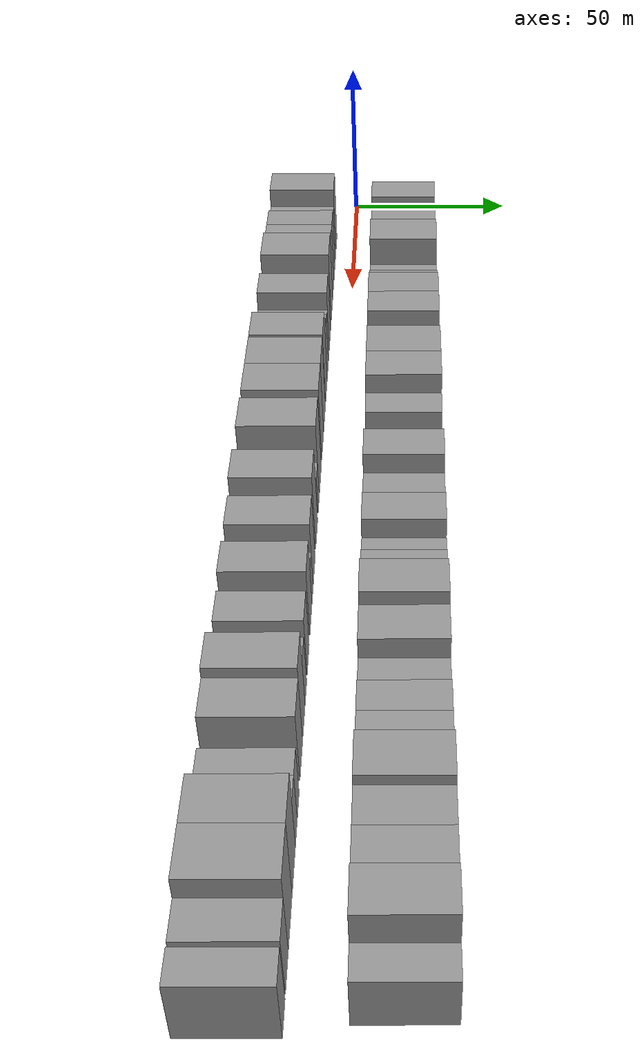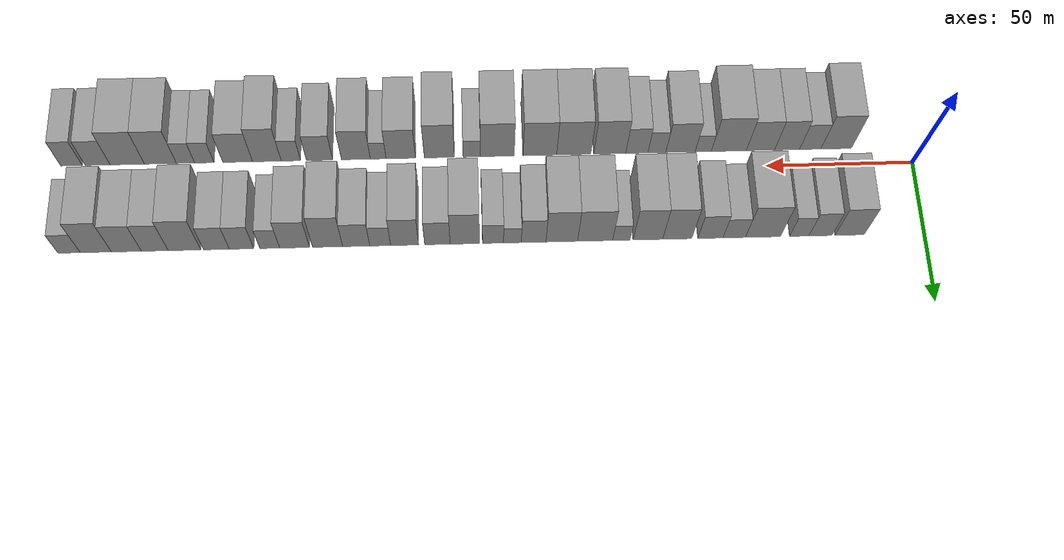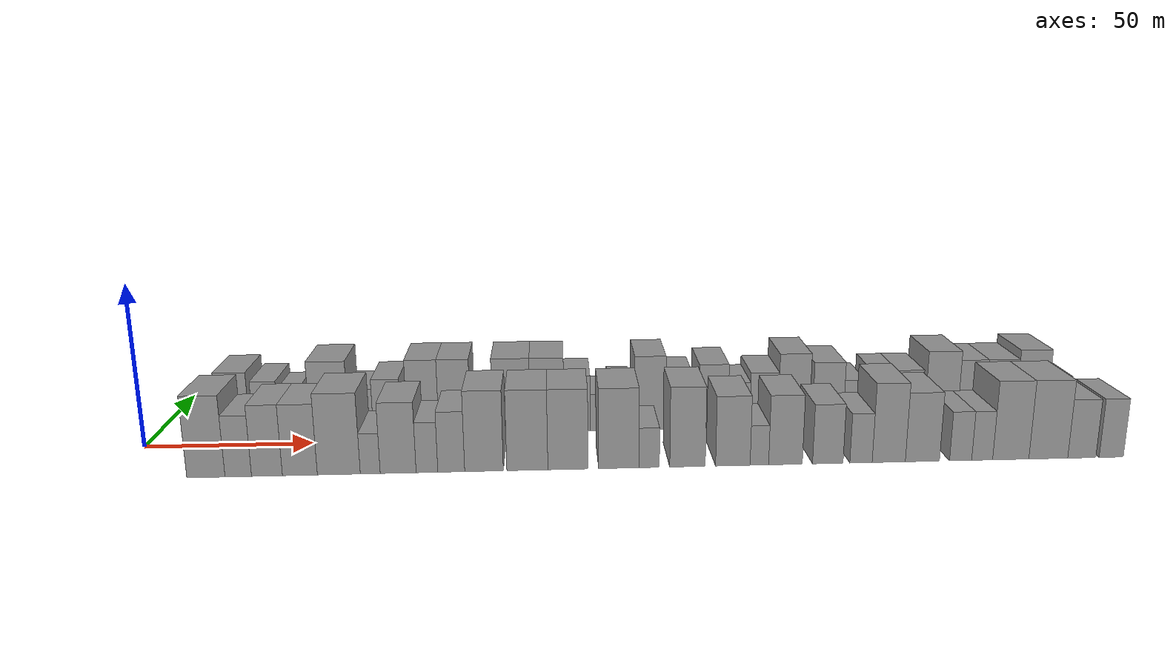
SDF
<sdf version="1.6">
 <world name="default">
  <scene>
   <sky><clouds><speed>12</speed></clouds></sky>
   <ambient>0.4 0.4 0.4 1</ambient>
   <background>0.7 0.7 0.7 1</background>
   <shadows>1</shadows>
  </scene>
  <gravity>0 0 -9.8066</gravity>
  <magnetic_field>6e-06 2.3e-05 -4.2e-05</magnetic_field>
  <physics default="0" name="default_physics" type="ode">
   <ode>
    <solver>
     <type>quick</type>
     <iters>10</iters>
     <sor>1.0</sor>
     <use_dynamic_moi_rescaling>0</use_dynamic_moi_rescaling>
    </solver>
    <constraints>
     <cfm>0</cfm>
     <erp>0.2</erp>
     <contact_max_correcting_vel>100</contact_max_correcting_vel>
     <contact_surface_layer>0.001</contact_surface_layer>
    </constraints>
   </ode>
   <max_step_size>0.004</max_step_size>
   <real_time_factor>1</real_time_factor>
   <real_time_update_rate>250</real_time_update_rate>
  </physics>
  <light name="sun" type="directional">
   <pose>0 0 10 0 0 0</pose>
   <diffuse>0.8 0.8 0.8 1</diffuse>
   <specular>0.2 0.2 0.2 1</specular>
   <attenuation>
    <range>1000</range>
    <constant>0.9</constant>
    <linear>0.01</linear>
    <quadratic>0.001</quadratic>
   </attenuation>
   <direction>-0.5 0.1 -0.9</direction>
  </light>
  <model name="building_1">
   <static>1</static>
   <pose>24.8922 16.0000 0 0.000000 0.000000 1.570796</pose>
   <link name="link">
    <pose>0 0 10.50 0 0 0</pose>
    <collision name="collision"><geometry><box><size>20.0000 9.7844 21.0000</size></box></geometry></collision>
    <visual name="visual">
     <cast_shadows>0</cast_shadows>
     <geometry><box><size>20.0000 9.7844 21.0000</size></box></geometry>
     <material>
      <script>
       <uri>model://grey_wall/materials/scripts</uri>
       <uri>model://grey_wall/materials/textures</uri>
       <name>vrc/grey_wall</name>
      </script>
     </material>
    </visual>
   </link>
  </model>
  <model name="building_2">
   <static>1</static>
   <pose>34.6466 16.0000 0 0.000000 0.000000 1.570796</pose>
   <link name="link">
    <pose>0 0 9.00 0 0 0</pose>
    <collision name="collision"><geometry><box><size>20.0000 7.7245 18.0000</size></box></geometry></collision>
    <visual name="visual">
     <cast_shadows>0</cast_shadows>
     <geometry><box><size>20.0000 7.7245 18.0000</size></box></geometry>
     <material>
      <script>
       <uri>model://grey_wall/materials/scripts</uri>
       <uri>model://grey_wall/materials/textures</uri>
       <name>vrc/grey_wall</name>
      </script>
     </material>
    </visual>
   </link>
  </model>
  <model name="building_3">
   <static>1</static>
   <pose>41.7314 16.0000 0 0.000000 0.000000 1.570796</pose>
   <link name="link">
    <pose>0 0 7.50 0 0 0</pose>
    <collision name="collision"><geometry><box><size>20.0000 6.4452 15.0000</size></box></geometry></collision>
    <visual name="visual">
     <cast_shadows>0</cast_shadows>
     <geometry><box><size>20.0000 6.4452 15.0000</size></box></geometry>
     <material>
      <script>
       <uri>model://grey_wall/materials/scripts</uri>
       <uri>model://grey_wall/materials/textures</uri>
       <name>vrc/grey_wall</name>
      </script>
     </material>
    </visual>
   </link>
  </model>
  <model name="building_4">
   <static>1</static>
   <pose>53.8338 16.0000 0 0.000000 0.000000 1.570796</pose>
   <link name="link">
    <pose>0 0 12.00 0 0 0</pose>
    <collision name="collision"><geometry><box><size>20.0000 11.7596 24.0000</size></box></geometry></collision>
    <visual name="visual">
     <cast_shadows>0</cast_shadows>
     <geometry><box><size>20.0000 11.7596 24.0000</size></box></geometry>
     <material>
      <script>
       <uri>model://grey_wall/materials/scripts</uri>
       <uri>model://grey_wall/materials/textures</uri>
       <name>vrc/grey_wall</name>
      </script>
     </material>
    </visual>
   </link>
  </model>
  <model name="building_5">
   <static>1</static>
   <pose>63.4486 16.0000 0 0.000000 0.000000 1.570796</pose>
   <link name="link">
    <pose>0 0 7.50 0 0 0</pose>
    <collision name="collision"><geometry><box><size>20.0000 7.4700 15.0000</size></box></geometry></collision>
    <visual name="visual">
     <cast_shadows>0</cast_shadows>
     <geometry><box><size>20.0000 7.4700 15.0000</size></box></geometry>
     <material>
      <script>
       <uri>model://grey_wall/materials/scripts</uri>
       <uri>model://grey_wall/materials/textures</uri>
       <name>vrc/grey_wall</name>
      </script>
     </material>
    </visual>
   </link>
  </model>
  <model name="building_6">
   <static>1</static>
   <pose>71.3772 16.0000 0 0.000000 0.000000 1.570796</pose>
   <link name="link">
    <pose>0 0 9.00 0 0 0</pose>
    <collision name="collision"><geometry><box><size>20.0000 8.3873 18.0000</size></box></geometry></collision>
    <visual name="visual">
     <cast_shadows>0</cast_shadows>
     <geometry><box><size>20.0000 8.3873 18.0000</size></box></geometry>
     <material>
      <script>
       <uri>model://grey_wall/materials/scripts</uri>
       <uri>model://grey_wall/materials/textures</uri>
       <name>vrc/grey_wall</name>
      </script>
     </material>
    </visual>
   </link>
  </model>
  <model name="building_7">
   <static>1</static>
   <pose>82.4256 16.0000 0 0.000000 0.000000 1.570796</pose>
   <link name="link">
    <pose>0 0 12.00 0 0 0</pose>
    <collision name="collision"><geometry><box><size>20.0000 9.7095 24.0000</size></box></geometry></collision>
    <visual name="visual">
     <cast_shadows>0</cast_shadows>
     <geometry><box><size>20.0000 9.7095 24.0000</size></box></geometry>
     <material>
      <script>
       <uri>model://grey_wall/materials/scripts</uri>
       <uri>model://grey_wall/materials/textures</uri>
       <name>vrc/grey_wall</name>
      </script>
     </material>
    </visual>
   </link>
  </model>
  <model name="building_8">
   <static>1</static>
   <pose>92.1983 16.0000 0 0.000000 0.000000 1.570796</pose>
   <link name="link">
    <pose>0 0 12.00 0 0 0</pose>
    <collision name="collision"><geometry><box><size>20.0000 9.8359 24.0000</size></box></geometry></collision>
    <visual name="visual">
     <cast_shadows>0</cast_shadows>
     <geometry><box><size>20.0000 9.8359 24.0000</size></box></geometry>
     <material>
      <script>
       <uri>model://grey_wall/materials/scripts</uri>
       <uri>model://grey_wall/materials/textures</uri>
       <name>vrc/grey_wall</name>
      </script>
     </material>
    </visual>
   </link>
  </model>
  <model name="building_9">
   <static>1</static>
   <pose>101.0169 16.0000 0 0.000000 0.000000 1.570796</pose>
   <link name="link">
    <pose>0 0 6.00 0 0 0</pose>
    <collision name="collision"><geometry><box><size>20.0000 5.8012 12.0000</size></box></geometry></collision>
    <visual name="visual">
     <cast_shadows>0</cast_shadows>
     <geometry><box><size>20.0000 5.8012 12.0000</size></box></geometry>
     <material>
      <script>
       <uri>model://grey_wall/materials/scripts</uri>
       <uri>model://grey_wall/materials/textures</uri>
       <name>vrc/grey_wall</name>
      </script>
     </material>
    </visual>
   </link>
  </model>
  <model name="building_10">
   <static>1</static>
   <pose>109.7553 16.0000 0 0.000000 0.000000 1.570796</pose>
   <link name="link">
    <pose>0 0 12.00 0 0 0</pose>
    <collision name="collision"><geometry><box><size>20.0000 11.6758 24.0000</size></box></geometry></collision>
    <visual name="visual">
     <cast_shadows>0</cast_shadows>
     <geometry><box><size>20.0000 11.6758 24.0000</size></box></geometry>
     <material>
      <script>
       <uri>model://grey_wall/materials/scripts</uri>
       <uri>model://grey_wall/materials/textures</uri>
       <name>vrc/grey_wall</name>
      </script>
     </material>
    </visual>
   </link>
  </model>
  <model name="building_11">
   <static>1</static>
   <pose>120.8541 16.0000 0 0.000000 0.000000 1.570796</pose>
   <link name="link">
    <pose>0 0 12.00 0 0 0</pose>
    <collision name="collision"><geometry><box><size>20.0000 10.5218 24.0000</size></box></geometry></collision>
    <visual name="visual">
     <cast_shadows>0</cast_shadows>
     <geometry><box><size>20.0000 10.5218 24.0000</size></box></geometry>
     <material>
      <script>
       <uri>model://grey_wall/materials/scripts</uri>
       <uri>model://grey_wall/materials/textures</uri>
       <name>vrc/grey_wall</name>
      </script>
     </material>
    </visual>
   </link>
  </model>
  <model name="building_12">
   <static>1</static>
   <pose>130.2125 16.0000 0 0.000000 0.000000 1.570796</pose>
   <link name="link">
    <pose>0 0 9.00 0 0 0</pose>
    <collision name="collision"><geometry><box><size>20.0000 8.1949 18.0000</size></box></geometry></collision>
    <visual name="visual">
     <cast_shadows>0</cast_shadows>
     <geometry><box><size>20.0000 8.1949 18.0000</size></box></geometry>
     <material>
      <script>
       <uri>model://grey_wall/materials/scripts</uri>
       <uri>model://grey_wall/materials/textures</uri>
       <name>vrc/grey_wall</name>
      </script>
     </material>
    </visual>
   </link>
  </model>
  <model name="building_13">
   <static>1</static>
   <pose>137.2644 16.0000 0 0.000000 0.000000 1.570796</pose>
   <link name="link">
    <pose>0 0 6.00 0 0 0</pose>
    <collision name="collision"><geometry><box><size>20.0000 5.9089 12.0000</size></box></geometry></collision>
    <visual name="visual">
     <cast_shadows>0</cast_shadows>
     <geometry><box><size>20.0000 5.9089 12.0000</size></box></geometry>
     <material>
      <script>
       <uri>model://grey_wall/materials/scripts</uri>
       <uri>model://grey_wall/materials/textures</uri>
       <name>vrc/grey_wall</name>
      </script>
     </material>
    </visual>
   </link>
  </model>
  <model name="building_14">
   <static>1</static>
   <pose>143.6987 16.0000 0 0.000000 0.000000 1.570796</pose>
   <link name="link">
    <pose>0 0 7.50 0 0 0</pose>
    <collision name="collision"><geometry><box><size>20.0000 6.9597 15.0000</size></box></geometry></collision>
    <visual name="visual">
     <cast_shadows>0</cast_shadows>
     <geometry><box><size>20.0000 6.9597 15.0000</size></box></geometry>
     <material>
      <script>
       <uri>model://grey_wall/materials/scripts</uri>
       <uri>model://grey_wall/materials/textures</uri>
       <name>vrc/grey_wall</name>
      </script>
     </material>
    </visual>
   </link>
  </model>
  <model name="building_15">
   <static>1</static>
   <pose>153.0461 16.0000 0 0.000000 0.000000 1.570796</pose>
   <link name="link">
    <pose>0 0 12.00 0 0 0</pose>
    <collision name="collision"><geometry><box><size>20.0000 9.7351 24.0000</size></box></geometry></collision>
    <visual name="visual">
     <cast_shadows>0</cast_shadows>
     <geometry><box><size>20.0000 9.7351 24.0000</size></box></geometry>
     <material>
      <script>
       <uri>model://grey_wall/materials/scripts</uri>
       <uri>model://grey_wall/materials/textures</uri>
       <name>vrc/grey_wall</name>
      </script>
     </material>
    </visual>
   </link>
  </model>
  <model name="building_16">
   <static>1</static>
   <pose>162.1340 16.0000 0 0.000000 0.000000 1.570796</pose>
   <link name="link">
    <pose>0 0 9.00 0 0 0</pose>
    <collision name="collision"><geometry><box><size>20.0000 8.4407 18.0000</size></box></geometry></collision>
    <visual name="visual">
     <cast_shadows>0</cast_shadows>
     <geometry><box><size>20.0000 8.4407 18.0000</size></box></geometry>
     <material>
      <script>
       <uri>model://grey_wall/materials/scripts</uri>
       <uri>model://grey_wall/materials/textures</uri>
       <name>vrc/grey_wall</name>
      </script>
     </material>
    </visual>
   </link>
  </model>
  <model name="building_17">
   <static>1</static>
   <pose>172.9855 16.0000 0 0.000000 0.000000 1.570796</pose>
   <link name="link">
    <pose>0 0 10.50 0 0 0</pose>
    <collision name="collision"><geometry><box><size>20.0000 9.2622 21.0000</size></box></geometry></collision>
    <visual name="visual">
     <cast_shadows>0</cast_shadows>
     <geometry><box><size>20.0000 9.2622 21.0000</size></box></geometry>
     <material>
      <script>
       <uri>model://grey_wall/materials/scripts</uri>
       <uri>model://grey_wall/materials/textures</uri>
       <name>vrc/grey_wall</name>
      </script>
     </material>
    </visual>
   </link>
  </model>
  <model name="building_18">
   <static>1</static>
   <pose>181.0841 16.0000 0 0.000000 0.000000 1.570796</pose>
   <link name="link">
    <pose>0 0 7.50 0 0 0</pose>
    <collision name="collision"><geometry><box><size>20.0000 6.9351 15.0000</size></box></geometry></collision>
    <visual name="visual">
     <cast_shadows>0</cast_shadows>
     <geometry><box><size>20.0000 6.9351 15.0000</size></box></geometry>
     <material>
      <script>
       <uri>model://grey_wall/materials/scripts</uri>
       <uri>model://grey_wall/materials/textures</uri>
       <name>vrc/grey_wall</name>
      </script>
     </material>
    </visual>
   </link>
  </model>
  <model name="building_19">
   <static>1</static>
   <pose>189.0419 16.0000 0 0.000000 0.000000 1.570796</pose>
   <link name="link">
    <pose>0 0 9.00 0 0 0</pose>
    <collision name="collision"><geometry><box><size>20.0000 8.9804 18.0000</size></box></geometry></collision>
    <visual name="visual">
     <cast_shadows>0</cast_shadows>
     <geometry><box><size>20.0000 8.9804 18.0000</size></box></geometry>
     <material>
      <script>
       <uri>model://grey_wall/materials/scripts</uri>
       <uri>model://grey_wall/materials/textures</uri>
       <name>vrc/grey_wall</name>
      </script>
     </material>
    </visual>
   </link>
  </model>
  <model name="building_20">
   <static>1</static>
   <pose>198.5255 16.0000 0 0.000000 0.000000 1.570796</pose>
   <link name="link">
    <pose>0 0 12.00 0 0 0</pose>
    <collision name="collision"><geometry><box><size>20.0000 9.9867 24.0000</size></box></geometry></collision>
    <visual name="visual">
     <cast_shadows>0</cast_shadows>
     <geometry><box><size>20.0000 9.9867 24.0000</size></box></geometry>
     <material>
      <script>
       <uri>model://grey_wall/materials/scripts</uri>
       <uri>model://grey_wall/materials/textures</uri>
       <name>vrc/grey_wall</name>
      </script>
     </material>
    </visual>
   </link>
  </model>
  <model name="building_21">
   <static>1</static>
   <pose>209.4666 16.0000 0 0.000000 0.000000 1.570796</pose>
   <link name="link">
    <pose>0 0 10.50 0 0 0</pose>
    <collision name="collision"><geometry><box><size>20.0000 9.8956 21.0000</size></box></geometry></collision>
    <visual name="visual">
     <cast_shadows>0</cast_shadows>
     <geometry><box><size>20.0000 9.8956 21.0000</size></box></geometry>
     <material>
      <script>
       <uri>model://grey_wall/materials/scripts</uri>
       <uri>model://grey_wall/materials/textures</uri>
       <name>vrc/grey_wall</name>
      </script>
     </material>
    </visual>
   </link>
  </model>
  <model name="building_22">
   <static>1</static>
   <pose>217.6967 16.0000 0 0.000000 0.000000 1.570796</pose>
   <link name="link">
    <pose>0 0 7.50 0 0 0</pose>
    <collision name="collision"><geometry><box><size>20.0000 6.5645 15.0000</size></box></geometry></collision>
    <visual name="visual">
     <cast_shadows>0</cast_shadows>
     <geometry><box><size>20.0000 6.5645 15.0000</size></box></geometry>
     <material>
      <script>
       <uri>model://grey_wall/materials/scripts</uri>
       <uri>model://grey_wall/materials/textures</uri>
       <name>vrc/grey_wall</name>
      </script>
     </material>
    </visual>
   </link>
  </model>
  <model name="building_23">
   <static>1</static>
   <pose>227.0203 16.0000 0 0.000000 0.000000 1.570796</pose>
   <link name="link">
    <pose>0 0 9.00 0 0 0</pose>
    <collision name="collision"><geometry><box><size>20.0000 8.0828 18.0000</size></box></geometry></collision>
    <visual name="visual">
     <cast_shadows>0</cast_shadows>
     <geometry><box><size>20.0000 8.0828 18.0000</size></box></geometry>
     <material>
      <script>
       <uri>model://grey_wall/materials/scripts</uri>
       <uri>model://grey_wall/materials/textures</uri>
       <name>vrc/grey_wall</name>
      </script>
     </material>
    </visual>
   </link>
  </model>
  <model name="building_24">
   <static>1</static>
   <pose>235.3037 16.0000 0 0.000000 0.000000 1.570796</pose>
   <link name="link">
    <pose>0 0 9.00 0 0 0</pose>
    <collision name="collision"><geometry><box><size>20.0000 8.4839 18.0000</size></box></geometry></collision>
    <visual name="visual">
     <cast_shadows>0</cast_shadows>
     <geometry><box><size>20.0000 8.4839 18.0000</size></box></geometry>
     <material>
      <script>
       <uri>model://grey_wall/materials/scripts</uri>
       <uri>model://grey_wall/materials/textures</uri>
       <name>vrc/grey_wall</name>
      </script>
     </material>
    </visual>
   </link>
  </model>
  <model name="building_25">
   <static>1</static>
   <pose>245.9014 16.0000 0 0.000000 0.000000 1.570796</pose>
   <link name="link">
    <pose>0 0 12.00 0 0 0</pose>
    <collision name="collision"><geometry><box><size>20.0000 10.7115 24.0000</size></box></geometry></collision>
    <visual name="visual">
     <cast_shadows>0</cast_shadows>
     <geometry><box><size>20.0000 10.7115 24.0000</size></box></geometry>
     <material>
      <script>
       <uri>model://grey_wall/materials/scripts</uri>
       <uri>model://grey_wall/materials/textures</uri>
       <name>vrc/grey_wall</name>
      </script>
     </material>
    </visual>
   </link>
  </model>
  <model name="building_26">
   <static>1</static>
   <pose>255.6859 16.0000 0 0.000000 0.000000 1.570796</pose>
   <link name="link">
    <pose>0 0 10.50 0 0 0</pose>
    <collision name="collision"><geometry><box><size>20.0000 8.8575 21.0000</size></box></geometry></collision>
    <visual name="visual">
     <cast_shadows>0</cast_shadows>
     <geometry><box><size>20.0000 8.8575 21.0000</size></box></geometry>
     <material>
      <script>
       <uri>model://grey_wall/materials/scripts</uri>
       <uri>model://grey_wall/materials/textures</uri>
       <name>vrc/grey_wall</name>
      </script>
     </material>
    </visual>
   </link>
  </model>
  <model name="building_27">
   <static>1</static>
   <pose>265.0890 16.0000 0 0.000000 0.000000 1.570796</pose>
   <link name="link">
    <pose>0 0 10.50 0 0 0</pose>
    <collision name="collision"><geometry><box><size>20.0000 9.9487 21.0000</size></box></geometry></collision>
    <visual name="visual">
     <cast_shadows>0</cast_shadows>
     <geometry><box><size>20.0000 9.9487 21.0000</size></box></geometry>
     <material>
      <script>
       <uri>model://grey_wall/materials/scripts</uri>
       <uri>model://grey_wall/materials/textures</uri>
       <name>vrc/grey_wall</name>
      </script>
     </material>
    </visual>
   </link>
  </model>
  <model name="building_28">
   <static>1</static>
   <pose>275.1896 16.0000 0 0.000000 0.000000 1.570796</pose>
   <link name="link">
    <pose>0 0 12.00 0 0 0</pose>
    <collision name="collision"><geometry><box><size>20.0000 10.2523 24.0000</size></box></geometry></collision>
    <visual name="visual">
     <cast_shadows>0</cast_shadows>
     <geometry><box><size>20.0000 10.2523 24.0000</size></box></geometry>
     <material>
      <script>
       <uri>model://grey_wall/materials/scripts</uri>
       <uri>model://grey_wall/materials/textures</uri>
       <name>vrc/grey_wall</name>
      </script>
     </material>
    </visual>
   </link>
  </model>
  <model name="building_29">
   <static>1</static>
   <pose>283.9976 16.0000 0 0.000000 0.000000 1.570796</pose>
   <link name="link">
    <pose>0 0 7.50 0 0 0</pose>
    <collision name="collision"><geometry><box><size>20.0000 7.3639 15.0000</size></box></geometry></collision>
    <visual name="visual">
     <cast_shadows>0</cast_shadows>
     <geometry><box><size>20.0000 7.3639 15.0000</size></box></geometry>
     <material>
      <script>
       <uri>model://grey_wall/materials/scripts</uri>
       <uri>model://grey_wall/materials/textures</uri>
       <name>vrc/grey_wall</name>
      </script>
     </material>
    </visual>
   </link>
  </model>
  <model name="building_30">
   <static>1</static>
   <pose>25.2647 -16.0000 0 0.000000 0.000000 1.570796</pose>
   <link name="link">
    <pose>0 0 12.00 0 0 0</pose>
    <collision name="collision"><geometry><box><size>20.0000 10.5294 24.0000</size></box></geometry></collision>
    <visual name="visual">
     <cast_shadows>0</cast_shadows>
     <geometry><box><size>20.0000 10.5294 24.0000</size></box></geometry>
     <material>
      <script>
       <uri>model://grey_wall/materials/scripts</uri>
       <uri>model://grey_wall/materials/textures</uri>
       <name>vrc/grey_wall</name>
      </script>
     </material>
    </visual>
   </link>
  </model>
  <model name="building_31">
   <static>1</static>
   <pose>34.1920 -16.0000 0 0.000000 0.000000 1.570796</pose>
   <link name="link">
    <pose>0 0 9.00 0 0 0</pose>
    <collision name="collision"><geometry><box><size>20.0000 7.3253 18.0000</size></box></geometry></collision>
    <visual name="visual">
     <cast_shadows>0</cast_shadows>
     <geometry><box><size>20.0000 7.3253 18.0000</size></box></geometry>
     <material>
      <script>
       <uri>model://grey_wall/materials/scripts</uri>
       <uri>model://grey_wall/materials/textures</uri>
       <name>vrc/grey_wall</name>
      </script>
     </material>
    </visual>
   </link>
  </model>
  <model name="building_32">
   <static>1</static>
   <pose>42.1336 -16.0000 0 0.000000 0.000000 1.570796</pose>
   <link name="link">
    <pose>0 0 10.50 0 0 0</pose>
    <collision name="collision"><geometry><box><size>20.0000 8.5578 21.0000</size></box></geometry></collision>
    <visual name="visual">
     <cast_shadows>0</cast_shadows>
     <geometry><box><size>20.0000 8.5578 21.0000</size></box></geometry>
     <material>
      <script>
       <uri>model://grey_wall/materials/scripts</uri>
       <uri>model://grey_wall/materials/textures</uri>
       <name>vrc/grey_wall</name>
      </script>
     </material>
    </visual>
   </link>
  </model>
  <model name="building_33">
   <static>1</static>
   <pose>51.2669 -16.0000 0 0.000000 0.000000 1.570796</pose>
   <link name="link">
    <pose>0 0 10.50 0 0 0</pose>
    <collision name="collision"><geometry><box><size>20.0000 9.7089 21.0000</size></box></geometry></collision>
    <visual name="visual">
     <cast_shadows>0</cast_shadows>
     <geometry><box><size>20.0000 9.7089 21.0000</size></box></geometry>
     <material>
      <script>
       <uri>model://grey_wall/materials/scripts</uri>
       <uri>model://grey_wall/materials/textures</uri>
       <name>vrc/grey_wall</name>
      </script>
     </material>
    </visual>
   </link>
  </model>
  <model name="building_34">
   <static>1</static>
   <pose>62.1186 -16.0000 0 0.000000 0.000000 1.570796</pose>
   <link name="link">
    <pose>0 0 12.00 0 0 0</pose>
    <collision name="collision"><geometry><box><size>20.0000 11.9946 24.0000</size></box></geometry></collision>
    <visual name="visual">
     <cast_shadows>0</cast_shadows>
     <geometry><box><size>20.0000 11.9946 24.0000</size></box></geometry>
     <material>
      <script>
       <uri>model://grey_wall/materials/scripts</uri>
       <uri>model://grey_wall/materials/textures</uri>
       <name>vrc/grey_wall</name>
      </script>
     </material>
    </visual>
   </link>
  </model>
  <model name="building_35">
   <static>1</static>
   <pose>70.9015 -16.0000 0 0.000000 0.000000 1.570796</pose>
   <link name="link">
    <pose>0 0 6.00 0 0 0</pose>
    <collision name="collision"><geometry><box><size>20.0000 5.5711 12.0000</size></box></geometry></collision>
    <visual name="visual">
     <cast_shadows>0</cast_shadows>
     <geometry><box><size>20.0000 5.5711 12.0000</size></box></geometry>
     <material>
      <script>
       <uri>model://grey_wall/materials/scripts</uri>
       <uri>model://grey_wall/materials/textures</uri>
       <name>vrc/grey_wall</name>
      </script>
     </material>
    </visual>
   </link>
  </model>
  <model name="building_36">
   <static>1</static>
   <pose>78.7327 -16.0000 0 0.000000 0.000000 1.570796</pose>
   <link name="link">
    <pose>0 0 10.50 0 0 0</pose>
    <collision name="collision"><geometry><box><size>20.0000 10.0915 21.0000</size></box></geometry></collision>
    <visual name="visual">
     <cast_shadows>0</cast_shadows>
     <geometry><box><size>20.0000 10.0915 21.0000</size></box></geometry>
     <material>
      <script>
       <uri>model://grey_wall/materials/scripts</uri>
       <uri>model://grey_wall/materials/textures</uri>
       <name>vrc/grey_wall</name>
      </script>
     </material>
    </visual>
   </link>
  </model>
  <model name="building_37">
   <static>1</static>
   <pose>86.8334 -16.0000 0 0.000000 0.000000 1.570796</pose>
   <link name="link">
    <pose>0 0 7.50 0 0 0</pose>
    <collision name="collision"><geometry><box><size>20.0000 6.1098 15.0000</size></box></geometry></collision>
    <visual name="visual">
     <cast_shadows>0</cast_shadows>
     <geometry><box><size>20.0000 6.1098 15.0000</size></box></geometry>
     <material>
      <script>
       <uri>model://grey_wall/materials/scripts</uri>
       <uri>model://grey_wall/materials/textures</uri>
       <name>vrc/grey_wall</name>
      </script>
     </material>
    </visual>
   </link>
  </model>
  <model name="building_38">
   <static>1</static>
   <pose>93.6871 -16.0000 0 0.000000 0.000000 1.570796</pose>
   <link name="link">
    <pose>0 0 9.00 0 0 0</pose>
    <collision name="collision"><geometry><box><size>20.0000 7.5977 18.0000</size></box></geometry></collision>
    <visual name="visual">
     <cast_shadows>0</cast_shadows>
     <geometry><box><size>20.0000 7.5977 18.0000</size></box></geometry>
     <material>
      <script>
       <uri>model://grey_wall/materials/scripts</uri>
       <uri>model://grey_wall/materials/textures</uri>
       <name>vrc/grey_wall</name>
      </script>
     </material>
    </visual>
   </link>
  </model>
  <model name="building_39">
   <static>1</static>
   <pose>102.9538 -16.0000 0 0.000000 0.000000 1.570796</pose>
   <link name="link">
    <pose>0 0 12.00 0 0 0</pose>
    <collision name="collision"><geometry><box><size>20.0000 10.9356 24.0000</size></box></geometry></collision>
    <visual name="visual">
     <cast_shadows>0</cast_shadows>
     <geometry><box><size>20.0000 10.9356 24.0000</size></box></geometry>
     <material>
      <script>
       <uri>model://grey_wall/materials/scripts</uri>
       <uri>model://grey_wall/materials/textures</uri>
       <name>vrc/grey_wall</name>
      </script>
     </material>
    </visual>
   </link>
  </model>
  <model name="building_40">
   <static>1</static>
   <pose>115.2608 -16.0000 0 0.000000 0.000000 1.570796</pose>
   <link name="link">
    <pose>0 0 12.00 0 0 0</pose>
    <collision name="collision"><geometry><box><size>20.0000 11.6785 24.0000</size></box></geometry></collision>
    <visual name="visual">
     <cast_shadows>0</cast_shadows>
     <geometry><box><size>20.0000 11.6785 24.0000</size></box></geometry>
     <material>
      <script>
       <uri>model://grey_wall/materials/scripts</uri>
       <uri>model://grey_wall/materials/textures</uri>
       <name>vrc/grey_wall</name>
      </script>
     </material>
    </visual>
   </link>
  </model>
  <model name="building_41">
   <static>1</static>
   <pose>126.8545 -16.0000 0 0.000000 0.000000 1.570796</pose>
   <link name="link">
    <pose>0 0 12.00 0 0 0</pose>
    <collision name="collision"><geometry><box><size>20.0000 11.5088 24.0000</size></box></geometry></collision>
    <visual name="visual">
     <cast_shadows>0</cast_shadows>
     <geometry><box><size>20.0000 11.5088 24.0000</size></box></geometry>
     <material>
      <script>
       <uri>model://grey_wall/materials/scripts</uri>
       <uri>model://grey_wall/materials/textures</uri>
       <name>vrc/grey_wall</name>
      </script>
     </material>
    </visual>
   </link>
  </model>
  <model name="building_42">
   <static>1</static>
   <pose>141.3920 -16.0000 0 0.000000 0.000000 1.570796</pose>
   <link name="link">
    <pose>0 0 12.00 0 0 0</pose>
    <collision name="collision"><geometry><box><size>20.0000 11.5662 24.0000</size></box></geometry></collision>
    <visual name="visual">
     <cast_shadows>0</cast_shadows>
     <geometry><box><size>20.0000 11.5662 24.0000</size></box></geometry>
     <material>
      <script>
       <uri>model://grey_wall/materials/scripts</uri>
       <uri>model://grey_wall/materials/textures</uri>
       <name>vrc/grey_wall</name>
      </script>
     </material>
    </visual>
   </link>
  </model>
  <model name="building_43">
   <static>1</static>
   <pose>150.1146 -16.0000 0 0.000000 0.000000 1.570796</pose>
   <link name="link">
    <pose>0 0 6.00 0 0 0</pose>
    <collision name="collision"><geometry><box><size>20.0000 5.8790 12.0000</size></box></geometry></collision>
    <visual name="visual">
     <cast_shadows>0</cast_shadows>
     <geometry><box><size>20.0000 5.8790 12.0000</size></box></geometry>
     <material>
      <script>
       <uri>model://grey_wall/materials/scripts</uri>
       <uri>model://grey_wall/materials/textures</uri>
       <name>vrc/grey_wall</name>
      </script>
     </material>
    </visual>
   </link>
  </model>
  <model name="building_44">
   <static>1</static>
   <pose>161.1828 -16.0000 0 0.000000 0.000000 1.570796</pose>
   <link name="link">
    <pose>0 0 12.00 0 0 0</pose>
    <collision name="collision"><geometry><box><size>20.0000 10.2574 24.0000</size></box></geometry></collision>
    <visual name="visual">
     <cast_shadows>0</cast_shadows>
     <geometry><box><size>20.0000 10.2574 24.0000</size></box></geometry>
     <material>
      <script>
       <uri>model://grey_wall/materials/scripts</uri>
       <uri>model://grey_wall/materials/textures</uri>
       <name>vrc/grey_wall</name>
      </script>
     </material>
    </visual>
   </link>
  </model>
  <model name="building_45">
   <static>1</static>
   <pose>174.3291 -16.0000 0 0.000000 0.000000 1.570796</pose>
   <link name="link">
    <pose>0 0 10.50 0 0 0</pose>
    <collision name="collision"><geometry><box><size>20.0000 10.0351 21.0000</size></box></geometry></collision>
    <visual name="visual">
     <cast_shadows>0</cast_shadows>
     <geometry><box><size>20.0000 10.0351 21.0000</size></box></geometry>
     <material>
      <script>
       <uri>model://grey_wall/materials/scripts</uri>
       <uri>model://grey_wall/materials/textures</uri>
       <name>vrc/grey_wall</name>
      </script>
     </material>
    </visual>
   </link>
  </model>
  <model name="building_46">
   <static>1</static>
   <pose>182.0410 -16.0000 0 0.000000 0.000000 1.570796</pose>
   <link name="link">
    <pose>0 0 6.00 0 0 0</pose>
    <collision name="collision"><geometry><box><size>20.0000 5.3889 12.0000</size></box></geometry></collision>
    <visual name="visual">
     <cast_shadows>0</cast_shadows>
     <geometry><box><size>20.0000 5.3889 12.0000</size></box></geometry>
     <material>
      <script>
       <uri>model://grey_wall/materials/scripts</uri>
       <uri>model://grey_wall/materials/textures</uri>
       <name>vrc/grey_wall</name>
      </script>
     </material>
    </visual>
   </link>
  </model>
  <model name="building_47">
   <static>1</static>
   <pose>189.6530 -16.0000 0 0.000000 0.000000 1.570796</pose>
   <link name="link">
    <pose>0 0 10.50 0 0 0</pose>
    <collision name="collision"><geometry><box><size>20.0000 9.8350 21.0000</size></box></geometry></collision>
    <visual name="visual">
     <cast_shadows>0</cast_shadows>
     <geometry><box><size>20.0000 9.8350 21.0000</size></box></geometry>
     <material>
      <script>
       <uri>model://grey_wall/materials/scripts</uri>
       <uri>model://grey_wall/materials/textures</uri>
       <name>vrc/grey_wall</name>
      </script>
     </material>
    </visual>
   </link>
  </model>
  <model name="building_48">
   <static>1</static>
   <pose>202.0434 -16.0000 0 0.000000 0.000000 1.570796</pose>
   <link name="link">
    <pose>0 0 9.00 0 0 0</pose>
    <collision name="collision"><geometry><box><size>20.0000 8.9458 18.0000</size></box></geometry></collision>
    <visual name="visual">
     <cast_shadows>0</cast_shadows>
     <geometry><box><size>20.0000 8.9458 18.0000</size></box></geometry>
     <material>
      <script>
       <uri>model://grey_wall/materials/scripts</uri>
       <uri>model://grey_wall/materials/textures</uri>
       <name>vrc/grey_wall</name>
      </script>
     </material>
    </visual>
   </link>
  </model>
  <model name="building_49">
   <static>1</static>
   <pose>211.8022 -16.0000 0 0.000000 0.000000 1.570796</pose>
   <link name="link">
    <pose>0 0 7.50 0 0 0</pose>
    <collision name="collision"><geometry><box><size>20.0000 6.5718 15.0000</size></box></geometry></collision>
    <visual name="visual">
     <cast_shadows>0</cast_shadows>
     <geometry><box><size>20.0000 6.5718 15.0000</size></box></geometry>
     <material>
      <script>
       <uri>model://grey_wall/materials/scripts</uri>
       <uri>model://grey_wall/materials/textures</uri>
       <name>vrc/grey_wall</name>
      </script>
     </material>
    </visual>
   </link>
  </model>
  <model name="building_50">
   <static>1</static>
   <pose>219.9842 -16.0000 0 0.000000 0.000000 1.570796</pose>
   <link name="link">
    <pose>0 0 12.00 0 0 0</pose>
    <collision name="collision"><geometry><box><size>20.0000 9.7920 24.0000</size></box></geometry></collision>
    <visual name="visual">
     <cast_shadows>0</cast_shadows>
     <geometry><box><size>20.0000 9.7920 24.0000</size></box></geometry>
     <material>
      <script>
       <uri>model://grey_wall/materials/scripts</uri>
       <uri>model://grey_wall/materials/textures</uri>
       <name>vrc/grey_wall</name>
      </script>
     </material>
    </visual>
   </link>
  </model>
  <model name="building_51">
   <static>1</static>
   <pose>229.9360 -16.0000 0 0.000000 0.000000 1.570796</pose>
   <link name="link">
    <pose>0 0 10.50 0 0 0</pose>
    <collision name="collision"><geometry><box><size>20.0000 10.1116 21.0000</size></box></geometry></collision>
    <visual name="visual">
     <cast_shadows>0</cast_shadows>
     <geometry><box><size>20.0000 10.1116 21.0000</size></box></geometry>
     <material>
      <script>
       <uri>model://grey_wall/materials/scripts</uri>
       <uri>model://grey_wall/materials/textures</uri>
       <name>vrc/grey_wall</name>
      </script>
     </material>
    </visual>
   </link>
  </model>
  <model name="building_52">
   <static>1</static>
   <pose>241.2775 -16.0000 0 0.000000 0.000000 1.570796</pose>
   <link name="link">
    <pose>0 0 7.50 0 0 0</pose>
    <collision name="collision"><geometry><box><size>20.0000 6.5715 15.0000</size></box></geometry></collision>
    <visual name="visual">
     <cast_shadows>0</cast_shadows>
     <geometry><box><size>20.0000 6.5715 15.0000</size></box></geometry>
     <material>
      <script>
       <uri>model://grey_wall/materials/scripts</uri>
       <uri>model://grey_wall/materials/textures</uri>
       <name>vrc/grey_wall</name>
      </script>
     </material>
    </visual>
   </link>
  </model>
  <model name="building_53">
   <static>1</static>
   <pose>247.6825 -16.0000 0 0.000000 0.000000 1.570796</pose>
   <link name="link">
    <pose>0 0 7.50 0 0 0</pose>
    <collision name="collision"><geometry><box><size>20.0000 6.2387 15.0000</size></box></geometry></collision>
    <visual name="visual">
     <cast_shadows>0</cast_shadows>
     <geometry><box><size>20.0000 6.2387 15.0000</size></box></geometry>
     <material>
      <script>
       <uri>model://grey_wall/materials/scripts</uri>
       <uri>model://grey_wall/materials/textures</uri>
       <name>vrc/grey_wall</name>
      </script>
     </material>
    </visual>
   </link>
  </model>
  <model name="building_54">
   <static>1</static>
   <pose>256.2199 -16.0000 0 0.000000 0.000000 1.570796</pose>
   <link name="link">
    <pose>0 0 12.00 0 0 0</pose>
    <collision name="collision"><geometry><box><size>20.0000 10.8360 24.0000</size></box></geometry></collision>
    <visual name="visual">
     <cast_shadows>0</cast_shadows>
     <geometry><box><size>20.0000 10.8360 24.0000</size></box></geometry>
     <material>
      <script>
       <uri>model://grey_wall/materials/scripts</uri>
       <uri>model://grey_wall/materials/textures</uri>
       <name>vrc/grey_wall</name>
      </script>
     </material>
    </visual>
   </link>
  </model>
  <model name="building_55">
   <static>1</static>
   <pose>267.4761 -16.0000 0 0.000000 0.000000 1.570796</pose>
   <link name="link">
    <pose>0 0 12.00 0 0 0</pose>
    <collision name="collision"><geometry><box><size>20.0000 11.6764 24.0000</size></box></geometry></collision>
    <visual name="visual">
     <cast_shadows>0</cast_shadows>
     <geometry><box><size>20.0000 11.6764 24.0000</size></box></geometry>
     <material>
      <script>
       <uri>model://grey_wall/materials/scripts</uri>
       <uri>model://grey_wall/materials/textures</uri>
       <name>vrc/grey_wall</name>
      </script>
     </material>
    </visual>
   </link>
  </model>
  <model name="building_56">
   <static>1</static>
   <pose>277.5467 -16.0000 0 0.000000 0.000000 1.570796</pose>
   <link name="link">
    <pose>0 0 9.00 0 0 0</pose>
    <collision name="collision"><geometry><box><size>20.0000 8.4647 18.0000</size></box></geometry></collision>
    <visual name="visual">
     <cast_shadows>0</cast_shadows>
     <geometry><box><size>20.0000 8.4647 18.0000</size></box></geometry>
     <material>
      <script>
       <uri>model://grey_wall/materials/scripts</uri>
       <uri>model://grey_wall/materials/textures</uri>
       <name>vrc/grey_wall</name>
      </script>
     </material>
    </visual>
   </link>
  </model>
  <model name="building_57">
   <static>1</static>
   <pose>286.4220 -16.0000 0 0.000000 0.000000 1.570796</pose>
   <link name="link">
    <pose>0 0 9.00 0 0 0</pose>
    <collision name="collision"><geometry><box><size>20.0000 7.2860 18.0000</size></box></geometry></collision>
    <visual name="visual">
     <cast_shadows>0</cast_shadows>
     <geometry><box><size>20.0000 7.2860 18.0000</size></box></geometry>
     <material>
      <script>
       <uri>model://grey_wall/materials/scripts</uri>
       <uri>model://grey_wall/materials/textures</uri>
       <name>vrc/grey_wall</name>
      </script>
     </material>
    </visual>
   </link>
  </model>
 </world>
</sdf>
